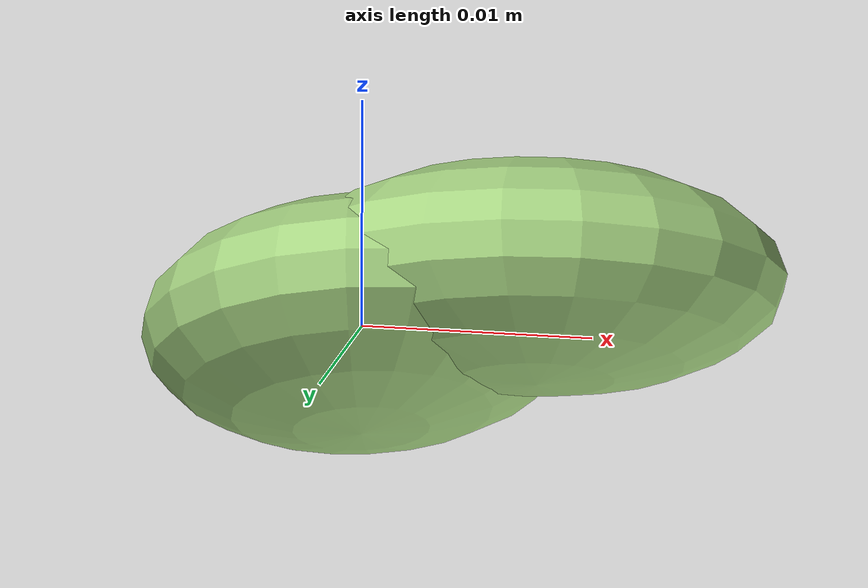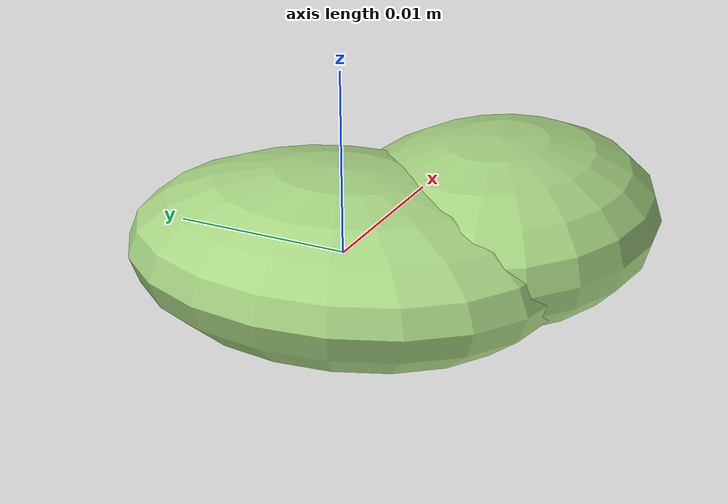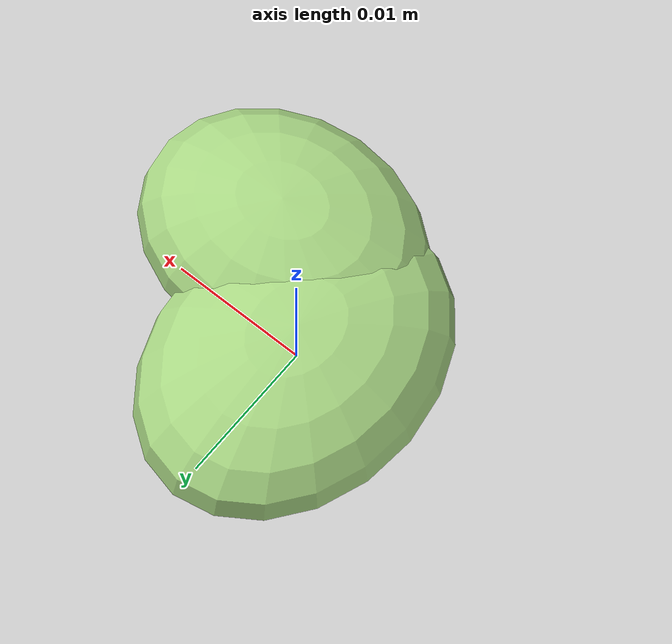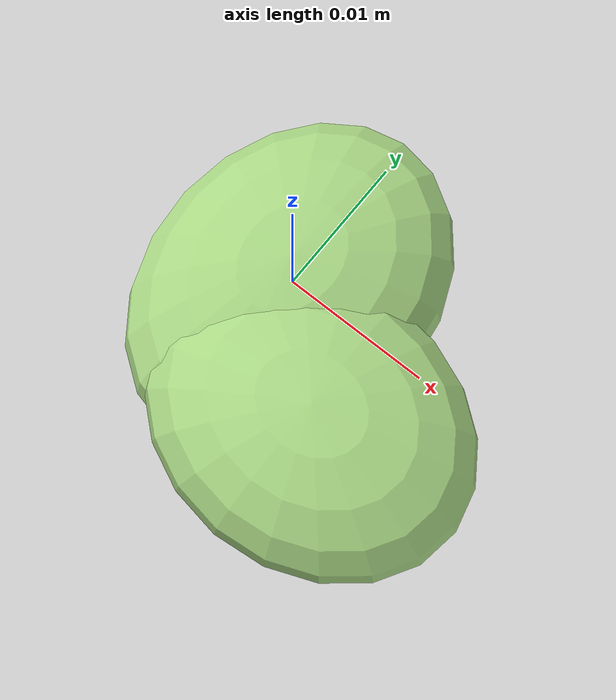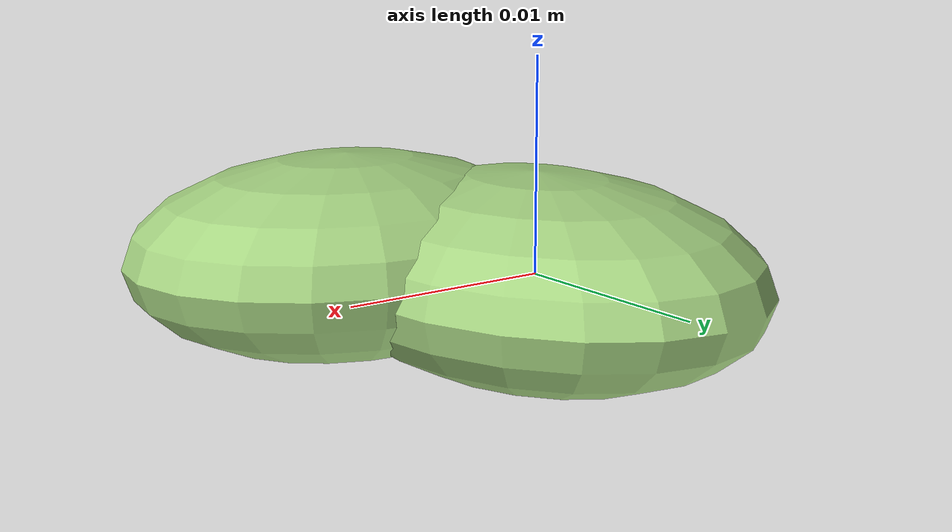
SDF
<?xml version="1.0" ?>
<!-- |    This document was autogenerated by xmacro from data/veggie_template/veggie_base.sdf.xacro  | -->
<!-- |    EDITING THIS FILE BY HAND IS NOT RECOMMENDED                                               | -->
<sdf version="1.8">
	<!-- Parameters -->
	<!-- Base -->
	<!-- Joint 0 -->
	<!-- Link 1 -->
	<!-- Joint 1 -->
	<!-- Link 2 -->
	<!-- Primitives -->
	<!-- All dimensions are half -->
	<!-- Object -->
	<model name="veggie">
		<!-- link0 -->
		<link name="link0">
			<inertial>
				<mass>0.00225626796326016</mass>
				<inertia>
					<ixx>7.693229553201388e-08</ixx>
					<ixy>0</ixy>
					<ixz>0</ixz>
					<iyy>4.9348752905841996e-08</iyy>
					<iyz>0</iyz>
					<izz>1.0586422341350063e-07</izz>
				</inertia>
			</inertial>
			<visual name="link0_visual">
				<pose>0 0 0 0 0 0</pose>
				<geometry>
					<ellipsoid>
						<radii>0.009313265049355235 0.01215990886011106 0.004756294849311075</radii>
					</ellipsoid>
				</geometry>
				<material>
					<ambient>0.659 0.839 0.514 1</ambient>
					<diffuse>0.659 0.839 0.514 1</diffuse>
					<specular>0 0 0 0</specular>
					<emissive>0 0 0 1</emissive>
				</material>
			</visual>
			<collision name="link0_collision">
				<pose>0 0 0 0 0 0 </pose>
				<geometry>
					<ellipsoid>
						<radii>0.009313265049355235 0.01215990886011106 0.004756294849311075</radii>
					</ellipsoid>
				</geometry>
			</collision>
		</link>
		<!-- link1 -->
		<joint name="joint0" type="fixed">
			<pose relative_to="link0">0.006233534111907936 -0.006145091548877978 0.000764437144861284 0.0 0.0 0.0</pose>
			<parent>link0</parent>
			<child>link1</child>
		</joint>
		<link name="link1">
			<pose relative_to="joint0">0 0 0 0 0 0</pose>
			<inertial>
				<mass>0.001790580029759754</mass>
				<inertia>
					<ixx>3.480421637043345e-08</ixx>
					<ixy>0</ixy>
					<ixz>0</ixz>
					<iyy>4.804953387949937e-08</iyy>
					<iyz>0</iyz>
					<izz>6.755346009591482e-08</izz>
				</inertia>
			</inertial>
			<visual name="link1_visual">
				<pose>0 0 0 0 0 0</pose>
				<geometry>
					<ellipsoid>
						<radii>0.010621247555142564 0.008707743161549094 0.004621925804479844</radii>
					</ellipsoid>
				</geometry>
				<material>
					<ambient>0.659 0.839 0.514 1</ambient>
					<diffuse>0.659 0.839 0.514 1</diffuse>
					<specular>0 0 0 0</specular>
					<emissive>0 0 0 1</emissive>
				</material>
			</visual>
			<collision name="link1_collision">
				<pose>0 0 0 0 0 0 </pose>
				<geometry>
					<ellipsoid>
						<radii>0.010621247555142564 0.008707743161549094 0.004621925804479844</radii>
					</ellipsoid>
				</geometry>
			</collision>
		</link>
		<!-- link2 -->
	</model>
</sdf>
